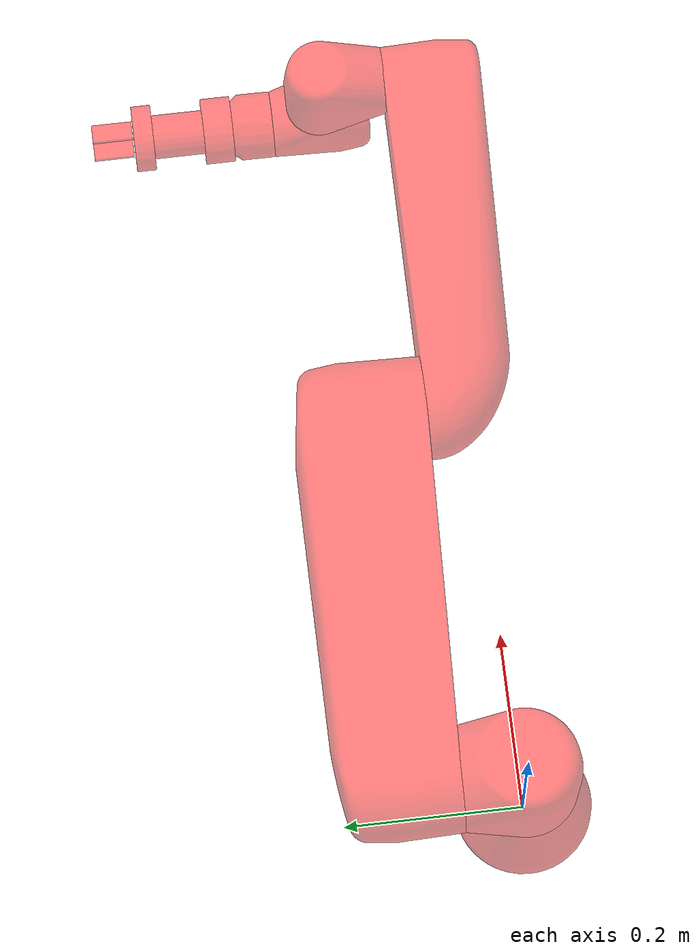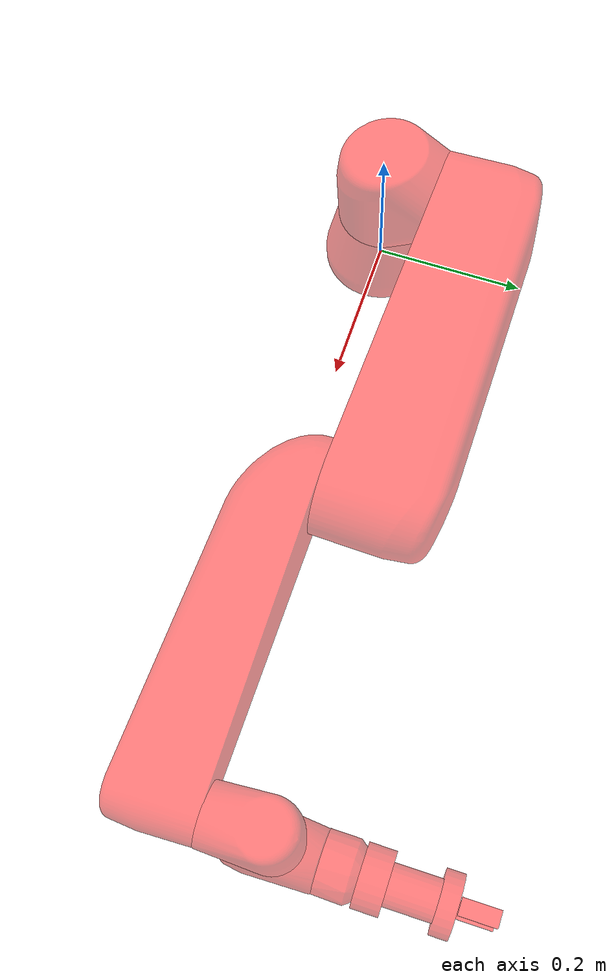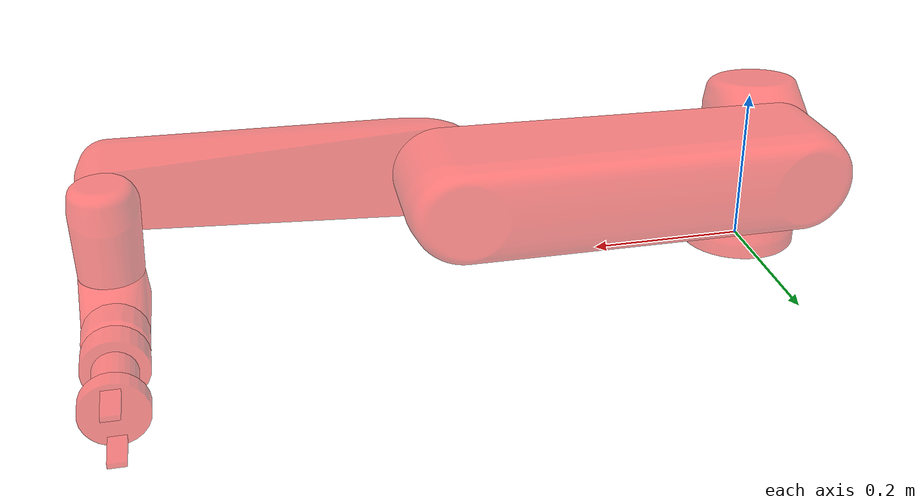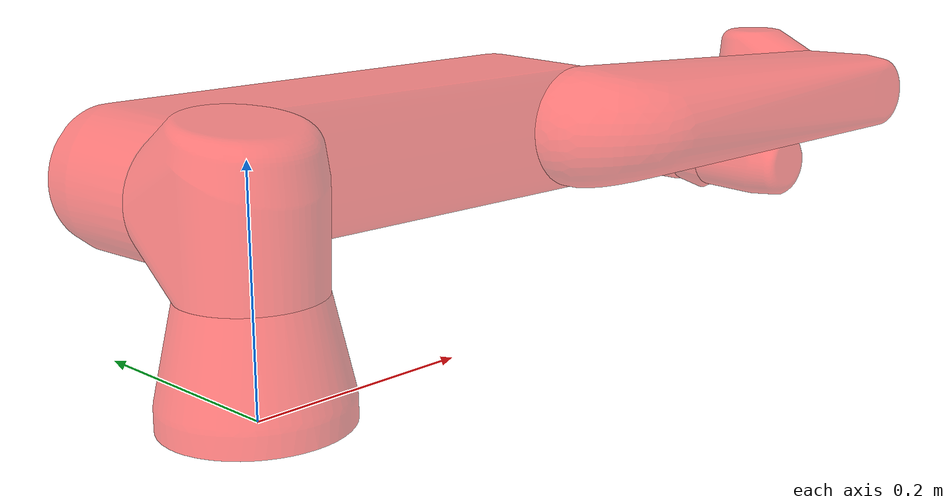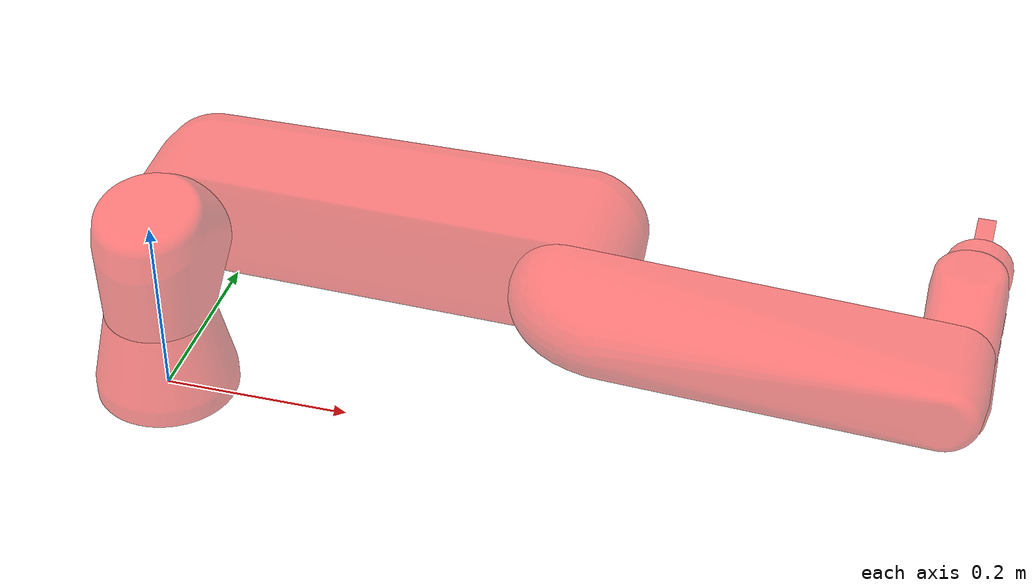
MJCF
<?xml version="1.0" ?>
<mujoco model="ur5e">
	<compiler meshdir="../meshes/" angle="radian" autolimits="true" balanceinertia="true" boundmass="0.000001" boundinertia="0.000001"/>
	<option timestep="0.001" gravity="0 0 -9.81">
		<flag contact="enable" energy="enable"/>
	</option>
	<default>
		<default class="visual">
			<geom contype="0" conaffinity="0"/>
		</default>
		<default class="collision">
			<geom rgba="1.0 0.0 0.0 0.5"/>
		</default>
	</default>
	<asset>
		<mesh name="base_collision1d01d01d0" file="stl/base.stl"/>
		<mesh name="shoulder_collision1d01d01d0" file="stl/shoulder.stl"/>
		<mesh name="upperarm_collision1d01d01d0" file="stl/upperarm.stl"/>
		<mesh name="forearm_collision1d01d01d0" file="stl/forearm.stl"/>
		<mesh name="wrist1_collision1d01d01d0" file="stl/wrist1.stl"/>
		<mesh name="wrist2_collision1d01d01d0" file="stl/wrist2.stl"/>
		<mesh name="wrist3_collision1d01d01d0" file="stl/wrist3.stl"/>
	</asset>
	<worldbody>
		<body name="ur5e" pos="0.0 0.0 0.0" quat="1.0 0.0 0.0 0.0">
			<body name="base_link" pos="0.0 0.0 0.0" quat="1.0 0.0 0.0 0.0">
				<body name="base" pos="0.0 0.0 0.0" quat="6.123233995736766e-17 0.0 0.0 1.0"/>
				<body name="base_link_inertia" pos="0.0 0.0 0.0" quat="6.123233995736766e-17 0.0 0.0 1.0">
					<geom name="base_link_inertia_collision_0" pos="0.0 0.0 0.0" quat="6.123233995736766e-17 0.0 0.0 1.0" class="collision" type="mesh" mesh="base_collision1d01d01d0"/>
					<body name="shoulder_link" pos="0.0 0.0 0.1625" quat="1.0 0.0 0.0 0.0">
						<geom name="shoulder_link_collision_0" pos="0.0 0.0 0.0" quat="6.123233995736766e-17 0.0 0.0 1.0" class="collision" type="mesh" mesh="shoulder_collision1d01d01d0"/>
						<joint name="shoulder_pan_joint" pos="0.0 0.0 0.0" type="hinge" range="0.0 3.141592653589793" axis="0.0 0.0 1.0"/>
						<body name="upper_arm_link" pos="0.0 0.0 0.0" quat="0.7071067811140325 0.7071067812590626 0.0 0.0">
							<geom name="upper_arm_link_collision_0" pos="0.0 0.0 0.138" quat="0.5000000000000001 0.5 -0.4999999999999999 -0.5" class="collision" type="mesh" mesh="upperarm_collision1d01d01d0"/>
							<joint name="shoulder_lift_joint" pos="0.0 0.0 0.0" type="hinge" range="-3.141592653589793 0.0" axis="0.0 0.0 1.0"/>
							<body name="forearm_link" pos="-0.425 0.0 0.0" quat="1.0 0.0 0.0 0.0">
								<geom name="forearm_link_collision_0" pos="0.0 0.0 0.007" quat="0.5000000000000001 0.5 -0.4999999999999999 -0.5" class="collision" type="mesh" mesh="forearm_collision1d01d01d0"/>
								<joint name="elbow_joint" pos="0.0 0.0 0.0" type="hinge" range="0.0 2.792526803190927" axis="0.0 0.0 1.0"/>
								<body name="wrist_1_link" pos="-0.39219999999999994 0.0 0.1333" quat="1.0 0.0 0.0 0.0">
									<geom name="wrist_1_link_collision_0" pos="0.0 0.0 -0.127" quat="0.7071067811865476 0.7071067811865475 0.0 0.0" class="collision" type="mesh" mesh="wrist1_collision1d01d01d0"/>
									<joint name="wrist_1_joint" pos="5.551115123125783e-17 -1.3943248149359506e-42 -6.798155367234455e-33" type="hinge" range="-3.141592653589793 1.3962634015954636" axis="0.0 0.0 1.0"/>
									<body name="wrist_2_link" pos="0.0 -0.0997 -2.044880931251214e-11" quat="0.7071067811140325 0.7071067812590626 0.0 0.0">
										<geom name="wrist_2_link_collision_0" pos="0.0 0.0 -0.0997" quat="1.0 0.0 0.0 0.0" class="collision" type="mesh" mesh="wrist2_collision1d01d01d0"/>
										<joint name="wrist_2_joint" pos="2.1382117680737565e-50 -2.5104663791261076e-18 5.149054595376939e-28" type="hinge" range="-0.17453292519943295 6.283185307179586" axis="0.0 0.0 1.0"/>
										<body name="wrist_3_link" pos="0.0 0.0996 -2.042829794213219e-11" quat="-0.7071067811140325 0.7071067812590626 -1.184881086872929e-16 -3.189250306608282e-17">
											<geom name="wrist_3_link_collision_0" pos="0.0 0.0 -0.0989" quat="0.7071067811865476 0.7071067811865475 0.0 0.0" class="collision" type="mesh" mesh="wrist3_collision1d01d01d0"/>
											<joint name="wrist_3_joint" pos="0.0 1.4513101558374102e-27 3.537994788930424e-18" type="hinge" range="-1.5707963267948966 1.5707963267948966" axis="0.0 0.0 1.0"/>
											<body name="flange" pos="0.0 0.0 0.0" quat="0.5000000000000001 -0.4999999999999999 -0.5 -0.5">
												<body name="tool0" pos="0.0 0.0 1.3877787807814457e-17" quat="0.5000000000000001 0.5 0.4999999999999999 0.5">
													<body name="gripper_hand_e_base" pos="0.0 0.0 0.0" quat="0.7071067811865476 0.7071067811865475 -2.453269466693394e-18 4.906538933386799e-17">
														<geom name="gripper_hand_e_base_collision_1" pos="0.0 0.101861 0.0" quat="0.7071067811865476 0.7071067811865475 0.0 0.0" class="collision" type="cylinder" size="0.0375 0.010939"/>
														<geom name="gripper_hand_e_base_collision_2" pos="0.0 0.062011 0.0" quat="0.7071067811865476 0.7071067811865475 0.0 0.0" class="collision" type="cylinder" size="0.025 0.028911"/>
														<geom name="gripper_hand_e_base_collision_0" pos="0.0 0.01655 0.0" quat="0.7071067811865476 0.7071067811865475 0.0 0.0" class="collision" type="cylinder" size="0.0375 0.01655"/>
														<body name="gripper_hand_e_finger_1" pos="0.0 0.0 0.0" quat="1.0 0.0 0.0 2.8698592549372254e-42">
															<geom name="gripper_hand_e_finger_1_collision_0" pos="0.0 0.13705 0.027498" quat="1.0 0.0 0.0 0.0" class="collision" type="box" size="0.01 0.02275 0.003"/>
															<joint name="gripper_hand_e_finger_1_joint" pos="0.0 -0.0 0.0" type="slide" range="0.0 0.02500000037252903" axis="0.0 0.0 -1.0000000000000004"/>
														</body>
														<body name="gripper_hand_e_finger_2" pos="0.0 0.0 0.0" quat="1.0 0.0 0.0 2.8698592549372254e-42">
															<geom name="gripper_hand_e_finger_2_collision_0" pos="0.0 0.13705 -0.028502" quat="1.0 0.0 0.0 0.0" class="collision" type="box" size="0.01 0.02275 0.003"/>
															<joint name="gripper_hand_e_finger_2_joint" pos="0.0 -0.0 0.0" type="slide" range="0.0 0.02500000037252903" axis="0.0 0.0 1.0"/>
														</body>
													</body>
												</body>
											</body>
										</body>
									</body>
								</body>
							</body>
						</body>
					</body>
				</body>
			</body>
		</body>
	</worldbody>

	<equality>
		<joint joint1="gripper_hand_e_finger_1_joint" joint2="gripper_hand_e_finger_2_joint" polycoef="0 1 0 0 0"/>
	</equality>
</mujoco>
